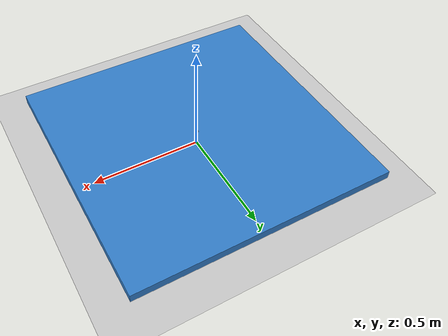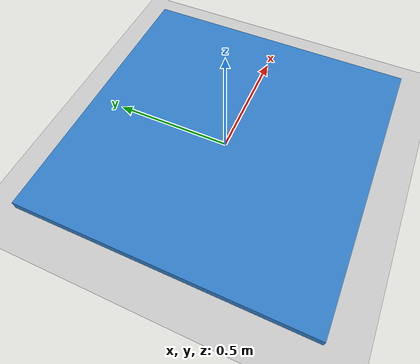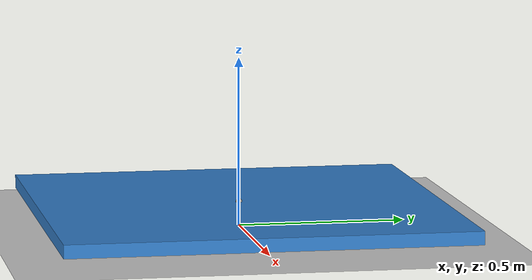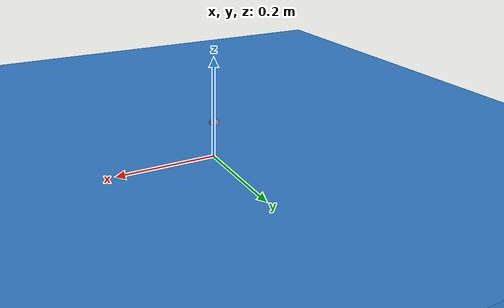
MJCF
<mujoco model="tilting_platform">
    <compiler angle="degree" coordinate="local"/>
    <option timestep="0.002" gravity="0 0 -9.81"/>

    <worldbody>
        <light directional="true" diffuse=".8 .8 .8" specular=".2 .2 .2" pos="0 0 5" dir="0 0 -1"/>

        <!-- Ground for reference -->
        <geom name="floor" type="plane" size="5 5 0.1" rgba=".8 .8 .8 1"/>

        <!-- Tilting Platform Assembly -->
        <body name="platform_base" pos="0 0 0.05">
            <!-- Hinge joint allows rotation around X axis (pitch) -->
            <joint name="platform_pitch" type="hinge" axis="1 0 0" pos="0 0 0"/>

            <!-- The actual platform surface -->
            <geom name="platform_surface" type="box" size="0.6 0.6 0.02" rgba="0.2 0.5 0.8 1"/>

            <!-- Marker to visualize the top of the platform -->
            <site name="platform_top" pos="0 0 0.02" size="0.01"/>
        </body>
    </worldbody>

    <actuator>
        <!-- Position servo to control the tilt angle -->
        <position name="platform_servo" joint="platform_pitch" kp="1000"/>
    </actuator>
</mujoco>
